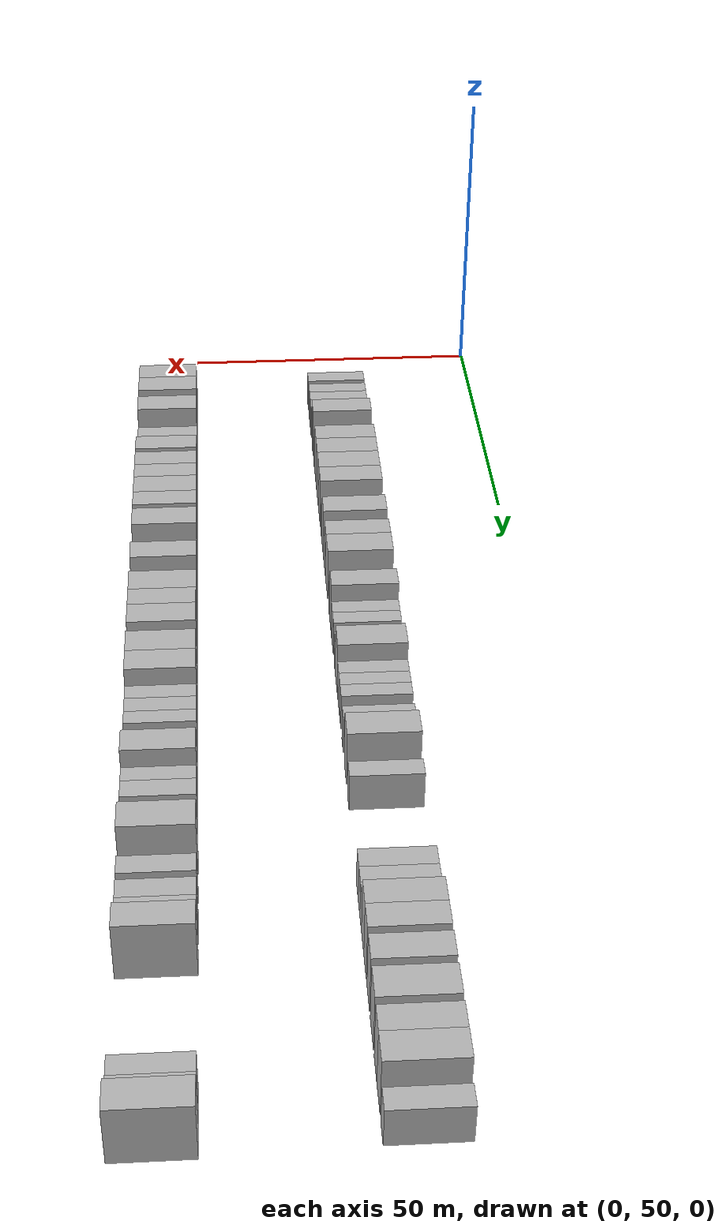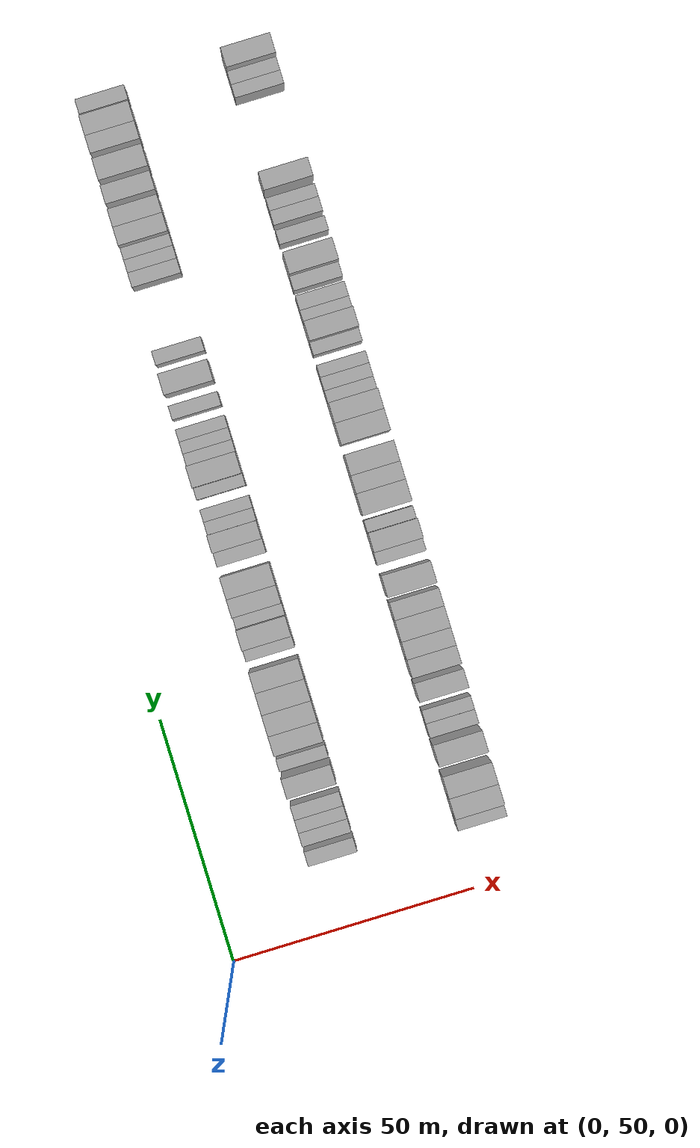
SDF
<sdf version="1.6">
 <world name="default">
  <model name="building_75">
   <static>1</static>
   <pose>25.0000 66.3676 0 0.000000 0.000000 0.000000</pose>
   <link name="link">
    <pose>0 0 3.00 0 0 0</pose>
    <collision name="collision"><geometry><box><size>10.0000 2.9807 6.0000</size></box></geometry></collision>
    <visual name="visual">
     <cast_shadows>0</cast_shadows>
     <geometry><box><size>10.0000 2.9807 6.0000</size></box></geometry>
     <material>
      <script>
       <uri>model://HANNAS_wall/materials/scripts</uri>
       <uri>model://HANNAS_wall/materials/textures</uri>
       <name>vrc/HANNAS_wall</name>
      </script>
     </material>
    </visual>
   </link>
  </model>
  <model name="building_76">
   <static>1</static>
   <pose>25.0000 70.2394 0 0.000000 0.000000 0.000000</pose>
   <link name="link">
    <pose>0 0 3.00 0 0 0</pose>
    <collision name="collision"><geometry><box><size>10.0000 2.7629 6.0000</size></box></geometry></collision>
    <visual name="visual">
     <cast_shadows>0</cast_shadows>
     <geometry><box><size>10.0000 2.7629 6.0000</size></box></geometry>
     <material>
      <script>
       <uri>model://HANNAS_wall/materials/scripts</uri>
       <uri>model://HANNAS_wall/materials/textures</uri>
       <name>vrc/HANNAS_wall</name>
      </script>
     </material>
    </visual>
   </link>
  </model>
  <model name="building_77">
   <static>1</static>
   <pose>25.0000 72.9438 0 0.000000 0.000000 0.000000</pose>
   <link name="link">
    <pose>0 0 3.00 0 0 0</pose>
    <collision name="collision"><geometry><box><size>10.0000 2.6461 6.0000</size></box></geometry></collision>
    <visual name="visual">
     <cast_shadows>0</cast_shadows>
     <geometry><box><size>10.0000 2.6461 6.0000</size></box></geometry>
     <material>
      <script>
       <uri>model://HANNAS_wall/materials/scripts</uri>
       <uri>model://HANNAS_wall/materials/textures</uri>
       <name>vrc/HANNAS_wall</name>
      </script>
     </material>
    </visual>
   </link>
  </model>
  <model name="building_78">
   <static>1</static>
   <pose>25.0000 75.7214 0 0.000000 0.000000 0.000000</pose>
   <link name="link">
    <pose>0 0 3.00 0 0 0</pose>
    <collision name="collision"><geometry><box><size>10.0000 2.9090 6.0000</size></box></geometry></collision>
    <visual name="visual">
     <cast_shadows>0</cast_shadows>
     <geometry><box><size>10.0000 2.9090 6.0000</size></box></geometry>
     <material>
      <script>
       <uri>model://HANNAS_wall/materials/scripts</uri>
       <uri>model://HANNAS_wall/materials/textures</uri>
       <name>vrc/HANNAS_wall</name>
      </script>
     </material>
    </visual>
   </link>
  </model>
  <model name="building_79">
   <static>1</static>
   <pose>25.0000 81.1714 0 0.000000 0.000000 0.000000</pose>
   <link name="link">
    <pose>0 0 4.50 0 0 0</pose>
    <collision name="collision"><geometry><box><size>10.0000 3.9910 9.0000</size></box></geometry></collision>
    <visual name="visual">
     <cast_shadows>0</cast_shadows>
     <geometry><box><size>10.0000 3.9910 9.0000</size></box></geometry>
     <material>
      <script>
       <uri>model://HANNAS_wall/materials/scripts</uri>
       <uri>model://HANNAS_wall/materials/textures</uri>
       <name>vrc/HANNAS_wall</name>
      </script>
     </material>
    </visual>
   </link>
  </model>
  <model name="building_80">
   <static>1</static>
   <pose>25.0000 85.4404 0 0.000000 0.000000 0.000000</pose>
   <link name="link">
    <pose>0 0 3.00 0 0 0</pose>
    <collision name="collision"><geometry><box><size>10.0000 2.5471 6.0000</size></box></geometry></collision>
    <visual name="visual">
     <cast_shadows>0</cast_shadows>
     <geometry><box><size>10.0000 2.5471 6.0000</size></box></geometry>
     <material>
      <script>
       <uri>model://HANNAS_wall/materials/scripts</uri>
       <uri>model://HANNAS_wall/materials/textures</uri>
       <name>vrc/HANNAS_wall</name>
      </script>
     </material>
    </visual>
   </link>
  </model>
  <model name="building_81">
   <static>1</static>
   <pose>25.0000 89.7248 0 0.000000 0.000000 0.000000</pose>
   <link name="link">
    <pose>0 0 4.50 0 0 0</pose>
    <collision name="collision"><geometry><box><size>10.0000 4.0216 9.0000</size></box></geometry></collision>
    <visual name="visual">
     <cast_shadows>0</cast_shadows>
     <geometry><box><size>10.0000 4.0216 9.0000</size></box></geometry>
     <material>
      <script>
       <uri>model://HANNAS_wall/materials/scripts</uri>
       <uri>model://HANNAS_wall/materials/textures</uri>
       <name>vrc/HANNAS_wall</name>
      </script>
     </material>
    </visual>
   </link>
  </model>
  <model name="building_82">
   <static>1</static>
   <pose>25.0000 93.8771 0 0.000000 0.000000 0.000000</pose>
   <link name="link">
    <pose>0 0 4.50 0 0 0</pose>
    <collision name="collision"><geometry><box><size>10.0000 4.2832 9.0000</size></box></geometry></collision>
    <visual name="visual">
     <cast_shadows>0</cast_shadows>
     <geometry><box><size>10.0000 4.2832 9.0000</size></box></geometry>
     <material>
      <script>
       <uri>model://HANNAS_wall/materials/scripts</uri>
       <uri>model://HANNAS_wall/materials/textures</uri>
       <name>vrc/HANNAS_wall</name>
      </script>
     </material>
    </visual>
   </link>
  </model>
  <model name="building_83">
   <static>1</static>
   <pose>25.0000 98.2273 0 0.000000 0.000000 0.000000</pose>
   <link name="link">
    <pose>0 0 4.50 0 0 0</pose>
    <collision name="collision"><geometry><box><size>10.0000 4.4171 9.0000</size></box></geometry></collision>
    <visual name="visual">
     <cast_shadows>0</cast_shadows>
     <geometry><box><size>10.0000 4.4171 9.0000</size></box></geometry>
     <material>
      <script>
       <uri>model://HANNAS_wall/materials/scripts</uri>
       <uri>model://HANNAS_wall/materials/textures</uri>
       <name>vrc/HANNAS_wall</name>
      </script>
     </material>
    </visual>
   </link>
  </model>
  <model name="building_84">
   <static>1</static>
   <pose>25.0000 102.5069 0 0.000000 0.000000 0.000000</pose>
   <link name="link">
    <pose>0 0 4.50 0 0 0</pose>
    <collision name="collision"><geometry><box><size>10.0000 4.1423 9.0000</size></box></geometry></collision>
    <visual name="visual">
     <cast_shadows>0</cast_shadows>
     <geometry><box><size>10.0000 4.1423 9.0000</size></box></geometry>
     <material>
      <script>
       <uri>model://HANNAS_wall/materials/scripts</uri>
       <uri>model://HANNAS_wall/materials/textures</uri>
       <name>vrc/HANNAS_wall</name>
      </script>
     </material>
    </visual>
   </link>
  </model>
  <model name="building_85">
   <static>1</static>
   <pose>25.0000 107.8034 0 0.000000 0.000000 0.000000</pose>
   <link name="link">
    <pose>0 0 3.00 0 0 0</pose>
    <collision name="collision"><geometry><box><size>10.0000 2.4506 6.0000</size></box></geometry></collision>
    <visual name="visual">
     <cast_shadows>0</cast_shadows>
     <geometry><box><size>10.0000 2.4506 6.0000</size></box></geometry>
     <material>
      <script>
       <uri>model://HANNAS_wall/materials/scripts</uri>
       <uri>model://HANNAS_wall/materials/textures</uri>
       <name>vrc/HANNAS_wall</name>
      </script>
     </material>
    </visual>
   </link>
  </model>
  <model name="building_86">
   <static>1</static>
   <pose>25.0000 111.1032 0 0.000000 0.000000 0.000000</pose>
   <link name="link">
    <pose>0 0 4.50 0 0 0</pose>
    <collision name="collision"><geometry><box><size>10.0000 4.1491 9.0000</size></box></geometry></collision>
    <visual name="visual">
     <cast_shadows>0</cast_shadows>
     <geometry><box><size>10.0000 4.1491 9.0000</size></box></geometry>
     <material>
      <script>
       <uri>model://HANNAS_wall/materials/scripts</uri>
       <uri>model://HANNAS_wall/materials/textures</uri>
       <name>vrc/HANNAS_wall</name>
      </script>
     </material>
    </visual>
   </link>
  </model>
  <model name="building_87">
   <static>1</static>
   <pose>25.0000 114.4354 0 0.000000 0.000000 0.000000</pose>
   <link name="link">
    <pose>0 0 3.00 0 0 0</pose>
    <collision name="collision"><geometry><box><size>10.0000 2.5153 6.0000</size></box></geometry></collision>
    <visual name="visual">
     <cast_shadows>0</cast_shadows>
     <geometry><box><size>10.0000 2.5153 6.0000</size></box></geometry>
     <material>
      <script>
       <uri>model://HANNAS_wall/materials/scripts</uri>
       <uri>model://HANNAS_wall/materials/textures</uri>
       <name>vrc/HANNAS_wall</name>
      </script>
     </material>
    </visual>
   </link>
  </model>
  <model name="building_88">
   <static>1</static>
   <pose>25.0000 117.5336 0 0.000000 0.000000 0.000000</pose>
   <link name="link">
    <pose>0 0 4.50 0 0 0</pose>
    <collision name="collision"><geometry><box><size>10.0000 3.6810 9.0000</size></box></geometry></collision>
    <visual name="visual">
     <cast_shadows>0</cast_shadows>
     <geometry><box><size>10.0000 3.6810 9.0000</size></box></geometry>
     <material>
      <script>
       <uri>model://HANNAS_wall/materials/scripts</uri>
       <uri>model://HANNAS_wall/materials/textures</uri>
       <name>vrc/HANNAS_wall</name>
      </script>
     </material>
    </visual>
   </link>
  </model>
  <model name="building_89">
   <static>1</static>
   <pose>25.0000 121.6174 0 0.000000 0.000000 0.000000</pose>
   <link name="link">
    <pose>0 0 4.50 0 0 0</pose>
    <collision name="collision"><geometry><box><size>10.0000 4.4866 9.0000</size></box></geometry></collision>
    <visual name="visual">
     <cast_shadows>0</cast_shadows>
     <geometry><box><size>10.0000 4.4866 9.0000</size></box></geometry>
     <material>
      <script>
       <uri>model://HANNAS_wall/materials/scripts</uri>
       <uri>model://HANNAS_wall/materials/textures</uri>
       <name>vrc/HANNAS_wall</name>
      </script>
     </material>
    </visual>
   </link>
  </model>
  <model name="building_90">
   <static>1</static>
   <pose>25.0000 127.3015 0 0.000000 0.000000 0.000000</pose>
   <link name="link">
    <pose>0 0 3.00 0 0 0</pose>
    <collision name="collision"><geometry><box><size>10.0000 2.8816 6.0000</size></box></geometry></collision>
    <visual name="visual">
     <cast_shadows>0</cast_shadows>
     <geometry><box><size>10.0000 2.8816 6.0000</size></box></geometry>
     <material>
      <script>
       <uri>model://HANNAS_wall/materials/scripts</uri>
       <uri>model://HANNAS_wall/materials/textures</uri>
       <name>vrc/HANNAS_wall</name>
      </script>
     </material>
    </visual>
   </link>
  </model>
  <model name="building_91">
   <static>1</static>
   <pose>25.0000 130.5735 0 0.000000 0.000000 0.000000</pose>
   <link name="link">
    <pose>0 0 4.50 0 0 0</pose>
    <collision name="collision"><geometry><box><size>10.0000 3.6624 9.0000</size></box></geometry></collision>
    <visual name="visual">
     <cast_shadows>0</cast_shadows>
     <geometry><box><size>10.0000 3.6624 9.0000</size></box></geometry>
     <material>
      <script>
       <uri>model://HANNAS_wall/materials/scripts</uri>
       <uri>model://HANNAS_wall/materials/textures</uri>
       <name>vrc/HANNAS_wall</name>
      </script>
     </material>
    </visual>
   </link>
  </model>
  <model name="building_92">
   <static>1</static>
   <pose>25.0000 133.7068 0 0.000000 0.000000 0.000000</pose>
   <link name="link">
    <pose>0 0 3.00 0 0 0</pose>
    <collision name="collision"><geometry><box><size>10.0000 2.6042 6.0000</size></box></geometry></collision>
    <visual name="visual">
     <cast_shadows>0</cast_shadows>
     <geometry><box><size>10.0000 2.6042 6.0000</size></box></geometry>
     <material>
      <script>
       <uri>model://HANNAS_wall/materials/scripts</uri>
       <uri>model://HANNAS_wall/materials/textures</uri>
       <name>vrc/HANNAS_wall</name>
      </script>
     </material>
    </visual>
   </link>
  </model>
  <model name="building_93">
   <static>1</static>
   <pose>25.0000 136.2714 0 0.000000 0.000000 0.000000</pose>
   <link name="link">
    <pose>0 0 3.00 0 0 0</pose>
    <collision name="collision"><geometry><box><size>10.0000 2.5250 6.0000</size></box></geometry></collision>
    <visual name="visual">
     <cast_shadows>0</cast_shadows>
     <geometry><box><size>10.0000 2.5250 6.0000</size></box></geometry>
     <material>
      <script>
       <uri>model://HANNAS_wall/materials/scripts</uri>
       <uri>model://HANNAS_wall/materials/textures</uri>
       <name>vrc/HANNAS_wall</name>
      </script>
     </material>
    </visual>
   </link>
  </model>
  <model name="building_94">
   <static>1</static>
   <pose>25.0000 140.7408 0 0.000000 0.000000 0.000000</pose>
   <link name="link">
    <pose>0 0 3.00 0 0 0</pose>
    <collision name="collision"><geometry><box><size>10.0000 2.4139 6.0000</size></box></geometry></collision>
    <visual name="visual">
     <cast_shadows>0</cast_shadows>
     <geometry><box><size>10.0000 2.4139 6.0000</size></box></geometry>
     <material>
      <script>
       <uri>model://HANNAS_wall/materials/scripts</uri>
       <uri>model://HANNAS_wall/materials/textures</uri>
       <name>vrc/HANNAS_wall</name>
      </script>
     </material>
    </visual>
   </link>
  </model>
  <model name="building_95">
   <static>1</static>
   <pose>25.0000 144.1523 0 0.000000 0.000000 0.000000</pose>
   <link name="link">
    <pose>0 0 4.50 0 0 0</pose>
    <collision name="collision"><geometry><box><size>10.0000 4.4091 9.0000</size></box></geometry></collision>
    <visual name="visual">
     <cast_shadows>0</cast_shadows>
     <geometry><box><size>10.0000 4.4091 9.0000</size></box></geometry>
     <material>
      <script>
       <uri>model://HANNAS_wall/materials/scripts</uri>
       <uri>model://HANNAS_wall/materials/textures</uri>
       <name>vrc/HANNAS_wall</name>
      </script>
     </material>
    </visual>
   </link>
  </model>
  <model name="building_96">
   <static>1</static>
   <pose>25.0000 147.6328 0 0.000000 0.000000 0.000000</pose>
   <link name="link">
    <pose>0 0 3.00 0 0 0</pose>
    <collision name="collision"><geometry><box><size>10.0000 2.5519 6.0000</size></box></geometry></collision>
    <visual name="visual">
     <cast_shadows>0</cast_shadows>
     <geometry><box><size>10.0000 2.5519 6.0000</size></box></geometry>
     <material>
      <script>
       <uri>model://HANNAS_wall/materials/scripts</uri>
       <uri>model://HANNAS_wall/materials/textures</uri>
       <name>vrc/HANNAS_wall</name>
      </script>
     </material>
    </visual>
   </link>
  </model>
  <model name="building_97">
   <static>1</static>
   <pose>25.0000 150.1394 0 0.000000 0.000000 0.000000</pose>
   <link name="link">
    <pose>0 0 3.00 0 0 0</pose>
    <collision name="collision"><geometry><box><size>10.0000 2.4614 6.0000</size></box></geometry></collision>
    <visual name="visual">
     <cast_shadows>0</cast_shadows>
     <geometry><box><size>10.0000 2.4614 6.0000</size></box></geometry>
     <material>
      <script>
       <uri>model://HANNAS_wall/materials/scripts</uri>
       <uri>model://HANNAS_wall/materials/textures</uri>
       <name>vrc/HANNAS_wall</name>
      </script>
     </material>
    </visual>
   </link>
  </model>
  <model name="building_98">
   <static>1</static>
   <pose>25.0000 152.6197 0 0.000000 0.000000 0.000000</pose>
   <link name="link">
    <pose>0 0 3.00 0 0 0</pose>
    <collision name="collision"><geometry><box><size>10.0000 2.4991 6.0000</size></box></geometry></collision>
    <visual name="visual">
     <cast_shadows>0</cast_shadows>
     <geometry><box><size>10.0000 2.4991 6.0000</size></box></geometry>
     <material>
      <script>
       <uri>model://HANNAS_wall/materials/scripts</uri>
       <uri>model://HANNAS_wall/materials/textures</uri>
       <name>vrc/HANNAS_wall</name>
      </script>
     </material>
    </visual>
   </link>
  </model>
  <model name="building_99">
   <static>1</static>
   <pose>25.0000 157.2809 0 0.000000 0.000000 0.000000</pose>
   <link name="link">
    <pose>0 0 3.00 0 0 0</pose>
    <collision name="collision"><geometry><box><size>10.0000 2.8234 6.0000</size></box></geometry></collision>
    <visual name="visual">
     <cast_shadows>0</cast_shadows>
     <geometry><box><size>10.0000 2.8234 6.0000</size></box></geometry>
     <material>
      <script>
       <uri>model://HANNAS_wall/materials/scripts</uri>
       <uri>model://HANNAS_wall/materials/textures</uri>
       <name>vrc/HANNAS_wall</name>
      </script>
     </material>
    </visual>
   </link>
  </model>
  <model name="building_100">
   <static>1</static>
   <pose>25.0000 162.8413 0 0.000000 0.000000 0.000000</pose>
   <link name="link">
    <pose>0 0 4.50 0 0 0</pose>
    <collision name="collision"><geometry><box><size>10.0000 4.2972 9.0000</size></box></geometry></collision>
    <visual name="visual">
     <cast_shadows>0</cast_shadows>
     <geometry><box><size>10.0000 4.2972 9.0000</size></box></geometry>
     <material>
      <script>
       <uri>model://HANNAS_wall/materials/scripts</uri>
       <uri>model://HANNAS_wall/materials/textures</uri>
       <name>vrc/HANNAS_wall</name>
      </script>
     </material>
    </visual>
   </link>
  </model>
  <model name="building_101">
   <static>1</static>
   <pose>25.0000 168.4213 0 0.000000 0.000000 0.000000</pose>
   <link name="link">
    <pose>0 0 3.00 0 0 0</pose>
    <collision name="collision"><geometry><box><size>10.0000 2.8628 6.0000</size></box></geometry></collision>
    <visual name="visual">
     <cast_shadows>0</cast_shadows>
     <geometry><box><size>10.0000 2.8628 6.0000</size></box></geometry>
     <material>
      <script>
       <uri>model://HANNAS_wall/materials/scripts</uri>
       <uri>model://HANNAS_wall/materials/textures</uri>
       <name>vrc/HANNAS_wall</name>
      </script>
     </material>
    </visual>
   </link>
  </model>
  <model name="building_102">
   <static>1</static>
   <pose>25.0000 184.3416 0 0.000000 0.000000 0.000000</pose>
   <link name="link">
    <pose>0 0 3.00 0 0 0</pose>
    <collision name="collision"><geometry><box><size>10.0000 2.9926 6.0000</size></box></geometry></collision>
    <visual name="visual">
     <cast_shadows>0</cast_shadows>
     <geometry><box><size>10.0000 2.9926 6.0000</size></box></geometry>
     <material>
      <script>
       <uri>model://HANNAS_wall/materials/scripts</uri>
       <uri>model://HANNAS_wall/materials/textures</uri>
       <name>vrc/HANNAS_wall</name>
      </script>
     </material>
    </visual>
   </link>
  </model>
  <model name="building_103">
   <static>1</static>
   <pose>25.0000 187.1449 0 0.000000 0.000000 0.000000</pose>
   <link name="link">
    <pose>0 0 3.00 0 0 0</pose>
    <collision name="collision"><geometry><box><size>10.0000 2.6141 6.0000</size></box></geometry></collision>
    <visual name="visual">
     <cast_shadows>0</cast_shadows>
     <geometry><box><size>10.0000 2.6141 6.0000</size></box></geometry>
     <material>
      <script>
       <uri>model://HANNAS_wall/materials/scripts</uri>
       <uri>model://HANNAS_wall/materials/textures</uri>
       <name>vrc/HANNAS_wall</name>
      </script>
     </material>
    </visual>
   </link>
  </model>
  <model name="building_104">
   <static>1</static>
   <pose>25.0000 189.6644 0 0.000000 0.000000 0.000000</pose>
   <link name="link">
    <pose>0 0 3.00 0 0 0</pose>
    <collision name="collision"><geometry><box><size>10.0000 2.4250 6.0000</size></box></geometry></collision>
    <visual name="visual">
     <cast_shadows>0</cast_shadows>
     <geometry><box><size>10.0000 2.4250 6.0000</size></box></geometry>
     <material>
      <script>
       <uri>model://HANNAS_wall/materials/scripts</uri>
       <uri>model://HANNAS_wall/materials/textures</uri>
       <name>vrc/HANNAS_wall</name>
      </script>
     </material>
    </visual>
   </link>
  </model>
  <model name="building_105">
   <static>1</static>
   <pose>25.0000 192.7424 0 0.000000 0.000000 0.000000</pose>
   <link name="link">
    <pose>0 0 4.50 0 0 0</pose>
    <collision name="collision"><geometry><box><size>10.0000 3.7309 9.0000</size></box></geometry></collision>
    <visual name="visual">
     <cast_shadows>0</cast_shadows>
     <geometry><box><size>10.0000 3.7309 9.0000</size></box></geometry>
     <material>
      <script>
       <uri>model://HANNAS_wall/materials/scripts</uri>
       <uri>model://HANNAS_wall/materials/textures</uri>
       <name>vrc/HANNAS_wall</name>
      </script>
     </material>
    </visual>
   </link>
  </model>
  <model name="building_106">
   <static>1</static>
   <pose>25.0000 196.4420 0 0.000000 0.000000 0.000000</pose>
   <link name="link">
    <pose>0 0 4.50 0 0 0</pose>
    <collision name="collision"><geometry><box><size>10.0000 3.6682 9.0000</size></box></geometry></collision>
    <visual name="visual">
     <cast_shadows>0</cast_shadows>
     <geometry><box><size>10.0000 3.6682 9.0000</size></box></geometry>
     <material>
      <script>
       <uri>model://HANNAS_wall/materials/scripts</uri>
       <uri>model://HANNAS_wall/materials/textures</uri>
       <name>vrc/HANNAS_wall</name>
      </script>
     </material>
    </visual>
   </link>
  </model>
  <model name="building_107">
   <static>1</static>
   <pose>25.0000 201.1630 0 0.000000 0.000000 0.000000</pose>
   <link name="link">
    <pose>0 0 4.50 0 0 0</pose>
    <collision name="collision"><geometry><box><size>10.0000 3.7739 9.0000</size></box></geometry></collision>
    <visual name="visual">
     <cast_shadows>0</cast_shadows>
     <geometry><box><size>10.0000 3.7739 9.0000</size></box></geometry>
     <material>
      <script>
       <uri>model://HANNAS_wall/materials/scripts</uri>
       <uri>model://HANNAS_wall/materials/textures</uri>
       <name>vrc/HANNAS_wall</name>
      </script>
     </material>
    </visual>
   </link>
  </model>
  <model name="building_108">
   <static>1</static>
   <pose>25.0000 206.2805 0 0.000000 0.000000 0.000000</pose>
   <link name="link">
    <pose>0 0 4.50 0 0 0</pose>
    <collision name="collision"><geometry><box><size>10.0000 4.4611 9.0000</size></box></geometry></collision>
    <visual name="visual">
     <cast_shadows>0</cast_shadows>
     <geometry><box><size>10.0000 4.4611 9.0000</size></box></geometry>
     <material>
      <script>
       <uri>model://HANNAS_wall/materials/scripts</uri>
       <uri>model://HANNAS_wall/materials/textures</uri>
       <name>vrc/HANNAS_wall</name>
      </script>
     </material>
    </visual>
   </link>
  </model>
  <model name="building_109">
   <static>1</static>
   <pose>25.0000 211.3111 0 0.000000 0.000000 0.000000</pose>
   <link name="link">
    <pose>0 0 4.50 0 0 0</pose>
    <collision name="collision"><geometry><box><size>10.0000 3.6001 9.0000</size></box></geometry></collision>
    <visual name="visual">
     <cast_shadows>0</cast_shadows>
     <geometry><box><size>10.0000 3.6001 9.0000</size></box></geometry>
     <material>
      <script>
       <uri>model://HANNAS_wall/materials/scripts</uri>
       <uri>model://HANNAS_wall/materials/textures</uri>
       <name>vrc/HANNAS_wall</name>
      </script>
     </material>
    </visual>
   </link>
  </model>
  <model name="building_110">
   <static>1</static>
   <pose>25.0000 215.1488 0 0.000000 0.000000 0.000000</pose>
   <link name="link">
    <pose>0 0 4.50 0 0 0</pose>
    <collision name="collision"><geometry><box><size>10.0000 4.0752 9.0000</size></box></geometry></collision>
    <visual name="visual">
     <cast_shadows>0</cast_shadows>
     <geometry><box><size>10.0000 4.0752 9.0000</size></box></geometry>
     <material>
      <script>
       <uri>model://HANNAS_wall/materials/scripts</uri>
       <uri>model://HANNAS_wall/materials/textures</uri>
       <name>vrc/HANNAS_wall</name>
      </script>
     </material>
    </visual>
   </link>
  </model>
  <model name="building_111">
   <static>1</static>
   <pose>25.0000 219.6779 0 0.000000 0.000000 0.000000</pose>
   <link name="link">
    <pose>0 0 3.00 0 0 0</pose>
    <collision name="collision"><geometry><box><size>10.0000 2.9830 6.0000</size></box></geometry></collision>
    <visual name="visual">
     <cast_shadows>0</cast_shadows>
     <geometry><box><size>10.0000 2.9830 6.0000</size></box></geometry>
     <material>
      <script>
       <uri>model://HANNAS_wall/materials/scripts</uri>
       <uri>model://HANNAS_wall/materials/textures</uri>
       <name>vrc/HANNAS_wall</name>
      </script>
     </material>
    </visual>
   </link>
  </model>
  <model name="building_182">
   <static>1</static>
   <pose>55.0000 64.4190 0 0.000000 0.000000 0.000000</pose>
   <link name="link">
    <pose>0 0 3.00 0 0 0</pose>
    <collision name="collision"><geometry><box><size>10.0000 2.8401 6.0000</size></box></geometry></collision>
    <visual name="visual">
     <cast_shadows>0</cast_shadows>
     <geometry><box><size>10.0000 2.8401 6.0000</size></box></geometry>
     <material>
      <script>
       <uri>model://HANNAS_wall/materials/scripts</uri>
       <uri>model://HANNAS_wall/materials/textures</uri>
       <name>vrc/HANNAS_wall</name>
      </script>
     </material>
    </visual>
   </link>
  </model>
  <model name="building_183">
   <static>1</static>
   <pose>55.0000 67.9407 0 0.000000 0.000000 0.000000</pose>
   <link name="link">
    <pose>0 0 4.50 0 0 0</pose>
    <collision name="collision"><geometry><box><size>10.0000 4.2033 9.0000</size></box></geometry></collision>
    <visual name="visual">
     <cast_shadows>0</cast_shadows>
     <geometry><box><size>10.0000 4.2033 9.0000</size></box></geometry>
     <material>
      <script>
       <uri>model://HANNAS_wall/materials/scripts</uri>
       <uri>model://HANNAS_wall/materials/textures</uri>
       <name>vrc/HANNAS_wall</name>
      </script>
     </material>
    </visual>
   </link>
  </model>
  <model name="building_184">
   <static>1</static>
   <pose>55.0000 72.2637 0 0.000000 0.000000 0.000000</pose>
   <link name="link">
    <pose>0 0 4.50 0 0 0</pose>
    <collision name="collision"><geometry><box><size>10.0000 4.4428 9.0000</size></box></geometry></collision>
    <visual name="visual">
     <cast_shadows>0</cast_shadows>
     <geometry><box><size>10.0000 4.4428 9.0000</size></box></geometry>
     <material>
      <script>
       <uri>model://HANNAS_wall/materials/scripts</uri>
       <uri>model://HANNAS_wall/materials/textures</uri>
       <name>vrc/HANNAS_wall</name>
      </script>
     </material>
    </visual>
   </link>
  </model>
  <model name="building_185">
   <static>1</static>
   <pose>55.0000 78.6843 0 0.000000 0.000000 0.000000</pose>
   <link name="link">
    <pose>0 0 4.50 0 0 0</pose>
    <collision name="collision"><geometry><box><size>10.0000 4.3985 9.0000</size></box></geometry></collision>
    <visual name="visual">
     <cast_shadows>0</cast_shadows>
     <geometry><box><size>10.0000 4.3985 9.0000</size></box></geometry>
     <material>
      <script>
       <uri>model://HANNAS_wall/materials/scripts</uri>
       <uri>model://HANNAS_wall/materials/textures</uri>
       <name>vrc/HANNAS_wall</name>
      </script>
     </material>
    </visual>
   </link>
  </model>
  <model name="building_186">
   <static>1</static>
   <pose>55.0000 83.3362 0 0.000000 0.000000 0.000000</pose>
   <link name="link">
    <pose>0 0 3.00 0 0 0</pose>
    <collision name="collision"><geometry><box><size>10.0000 2.9052 6.0000</size></box></geometry></collision>
    <visual name="visual">
     <cast_shadows>0</cast_shadows>
     <geometry><box><size>10.0000 2.9052 6.0000</size></box></geometry>
     <material>
      <script>
       <uri>model://HANNAS_wall/materials/scripts</uri>
       <uri>model://HANNAS_wall/materials/textures</uri>
       <name>vrc/HANNAS_wall</name>
      </script>
     </material>
    </visual>
   </link>
  </model>
  <model name="building_187">
   <static>1</static>
   <pose>55.0000 86.1601 0 0.000000 0.000000 0.000000</pose>
   <link name="link">
    <pose>0 0 3.00 0 0 0</pose>
    <collision name="collision"><geometry><box><size>10.0000 2.7425 6.0000</size></box></geometry></collision>
    <visual name="visual">
     <cast_shadows>0</cast_shadows>
     <geometry><box><size>10.0000 2.7425 6.0000</size></box></geometry>
     <material>
      <script>
       <uri>model://HANNAS_wall/materials/scripts</uri>
       <uri>model://HANNAS_wall/materials/textures</uri>
       <name>vrc/HANNAS_wall</name>
      </script>
     </material>
    </visual>
   </link>
  </model>
  <model name="building_188">
   <static>1</static>
   <pose>55.0000 91.4443 0 0.000000 0.000000 0.000000</pose>
   <link name="link">
    <pose>0 0 4.50 0 0 0</pose>
    <collision name="collision"><geometry><box><size>10.0000 3.8260 9.0000</size></box></geometry></collision>
    <visual name="visual">
     <cast_shadows>0</cast_shadows>
     <geometry><box><size>10.0000 3.8260 9.0000</size></box></geometry>
     <material>
      <script>
       <uri>model://HANNAS_wall/materials/scripts</uri>
       <uri>model://HANNAS_wall/materials/textures</uri>
       <name>vrc/HANNAS_wall</name>
      </script>
     </material>
    </visual>
   </link>
  </model>
  <model name="building_189">
   <static>1</static>
   <pose>55.0000 96.2243 0 0.000000 0.000000 0.000000</pose>
   <link name="link">
    <pose>0 0 4.50 0 0 0</pose>
    <collision name="collision"><geometry><box><size>10.0000 3.7340 9.0000</size></box></geometry></collision>
    <visual name="visual">
     <cast_shadows>0</cast_shadows>
     <geometry><box><size>10.0000 3.7340 9.0000</size></box></geometry>
     <material>
      <script>
       <uri>model://HANNAS_wall/materials/scripts</uri>
       <uri>model://HANNAS_wall/materials/textures</uri>
       <name>vrc/HANNAS_wall</name>
      </script>
     </material>
    </visual>
   </link>
  </model>
  <model name="building_190">
   <static>1</static>
   <pose>55.0000 99.8944 0 0.000000 0.000000 0.000000</pose>
   <link name="link">
    <pose>0 0 4.50 0 0 0</pose>
    <collision name="collision"><geometry><box><size>10.0000 3.6063 9.0000</size></box></geometry></collision>
    <visual name="visual">
     <cast_shadows>0</cast_shadows>
     <geometry><box><size>10.0000 3.6063 9.0000</size></box></geometry>
     <material>
      <script>
       <uri>model://HANNAS_wall/materials/scripts</uri>
       <uri>model://HANNAS_wall/materials/textures</uri>
       <name>vrc/HANNAS_wall</name>
      </script>
     </material>
    </visual>
   </link>
  </model>
  <model name="building_191">
   <static>1</static>
   <pose>55.0000 103.8733 0 0.000000 0.000000 0.000000</pose>
   <link name="link">
    <pose>0 0 4.50 0 0 0</pose>
    <collision name="collision"><geometry><box><size>10.0000 4.3514 9.0000</size></box></geometry></collision>
    <visual name="visual">
     <cast_shadows>0</cast_shadows>
     <geometry><box><size>10.0000 4.3514 9.0000</size></box></geometry>
     <material>
      <script>
       <uri>model://HANNAS_wall/materials/scripts</uri>
       <uri>model://HANNAS_wall/materials/textures</uri>
       <name>vrc/HANNAS_wall</name>
      </script>
     </material>
    </visual>
   </link>
  </model>
  <model name="building_192">
   <static>1</static>
   <pose>55.0000 107.8724 0 0.000000 0.000000 0.000000</pose>
   <link name="link">
    <pose>0 0 4.50 0 0 0</pose>
    <collision name="collision"><geometry><box><size>10.0000 3.6470 9.0000</size></box></geometry></collision>
    <visual name="visual">
     <cast_shadows>0</cast_shadows>
     <geometry><box><size>10.0000 3.6470 9.0000</size></box></geometry>
     <material>
      <script>
       <uri>model://HANNAS_wall/materials/scripts</uri>
       <uri>model://HANNAS_wall/materials/textures</uri>
       <name>vrc/HANNAS_wall</name>
      </script>
     </material>
    </visual>
   </link>
  </model>
  <model name="building_193">
   <static>1</static>
   <pose>55.0000 112.9070 0 0.000000 0.000000 0.000000</pose>
   <link name="link">
    <pose>0 0 4.50 0 0 0</pose>
    <collision name="collision"><geometry><box><size>10.0000 4.4221 9.0000</size></box></geometry></collision>
    <visual name="visual">
     <cast_shadows>0</cast_shadows>
     <geometry><box><size>10.0000 4.4221 9.0000</size></box></geometry>
     <material>
      <script>
       <uri>model://HANNAS_wall/materials/scripts</uri>
       <uri>model://HANNAS_wall/materials/textures</uri>
       <name>vrc/HANNAS_wall</name>
      </script>
     </material>
    </visual>
   </link>
  </model>
  <model name="building_194">
   <static>1</static>
   <pose>55.0000 118.4451 0 0.000000 0.000000 0.000000</pose>
   <link name="link">
    <pose>0 0 3.00 0 0 0</pose>
    <collision name="collision"><geometry><box><size>10.0000 2.6540 6.0000</size></box></geometry></collision>
    <visual name="visual">
     <cast_shadows>0</cast_shadows>
     <geometry><box><size>10.0000 2.6540 6.0000</size></box></geometry>
     <material>
      <script>
       <uri>model://HANNAS_wall/materials/scripts</uri>
       <uri>model://HANNAS_wall/materials/textures</uri>
       <name>vrc/HANNAS_wall</name>
      </script>
     </material>
    </visual>
   </link>
  </model>
  <model name="building_195">
   <static>1</static>
   <pose>55.0000 121.7594 0 0.000000 0.000000 0.000000</pose>
   <link name="link">
    <pose>0 0 4.50 0 0 0</pose>
    <collision name="collision"><geometry><box><size>10.0000 3.9746 9.0000</size></box></geometry></collision>
    <visual name="visual">
     <cast_shadows>0</cast_shadows>
     <geometry><box><size>10.0000 3.9746 9.0000</size></box></geometry>
     <material>
      <script>
       <uri>model://HANNAS_wall/materials/scripts</uri>
       <uri>model://HANNAS_wall/materials/textures</uri>
       <name>vrc/HANNAS_wall</name>
      </script>
     </material>
    </visual>
   </link>
  </model>
  <model name="building_196">
   <static>1</static>
   <pose>55.0000 124.9969 0 0.000000 0.000000 0.000000</pose>
   <link name="link">
    <pose>0 0 3.00 0 0 0</pose>
    <collision name="collision"><geometry><box><size>10.0000 2.5003 6.0000</size></box></geometry></collision>
    <visual name="visual">
     <cast_shadows>0</cast_shadows>
     <geometry><box><size>10.0000 2.5003 6.0000</size></box></geometry>
     <material>
      <script>
       <uri>model://HANNAS_wall/materials/scripts</uri>
       <uri>model://HANNAS_wall/materials/textures</uri>
       <name>vrc/HANNAS_wall</name>
      </script>
     </material>
    </visual>
   </link>
  </model>
  <model name="building_197">
   <static>1</static>
   <pose>55.0000 129.4509 0 0.000000 0.000000 0.000000</pose>
   <link name="link">
    <pose>0 0 4.50 0 0 0</pose>
    <collision name="collision"><geometry><box><size>10.0000 4.4078 9.0000</size></box></geometry></collision>
    <visual name="visual">
     <cast_shadows>0</cast_shadows>
     <geometry><box><size>10.0000 4.4078 9.0000</size></box></geometry>
     <material>
      <script>
       <uri>model://HANNAS_wall/materials/scripts</uri>
       <uri>model://HANNAS_wall/materials/textures</uri>
       <name>vrc/HANNAS_wall</name>
      </script>
     </material>
    </visual>
   </link>
  </model>
  <model name="building_198">
   <static>1</static>
   <pose>55.0000 133.4817 0 0.000000 0.000000 0.000000</pose>
   <link name="link">
    <pose>0 0 4.50 0 0 0</pose>
    <collision name="collision"><geometry><box><size>10.0000 3.6537 9.0000</size></box></geometry></collision>
    <visual name="visual">
     <cast_shadows>0</cast_shadows>
     <geometry><box><size>10.0000 3.6537 9.0000</size></box></geometry>
     <material>
      <script>
       <uri>model://HANNAS_wall/materials/scripts</uri>
       <uri>model://HANNAS_wall/materials/textures</uri>
       <name>vrc/HANNAS_wall</name>
      </script>
     </material>
    </visual>
   </link>
  </model>
  <model name="building_199">
   <static>1</static>
   <pose>55.0000 137.4118 0 0.000000 0.000000 0.000000</pose>
   <link name="link">
    <pose>0 0 4.50 0 0 0</pose>
    <collision name="collision"><geometry><box><size>10.0000 4.2064 9.0000</size></box></geometry></collision>
    <visual name="visual">
     <cast_shadows>0</cast_shadows>
     <geometry><box><size>10.0000 4.2064 9.0000</size></box></geometry>
     <material>
      <script>
       <uri>model://HANNAS_wall/materials/scripts</uri>
       <uri>model://HANNAS_wall/materials/textures</uri>
       <name>vrc/HANNAS_wall</name>
      </script>
     </material>
    </visual>
   </link>
  </model>
  <model name="building_200">
   <static>1</static>
   <pose>55.0000 143.7130 0 0.000000 0.000000 0.000000</pose>
   <link name="link">
    <pose>0 0 4.50 0 0 0</pose>
    <collision name="collision"><geometry><box><size>10.0000 4.3960 9.0000</size></box></geometry></collision>
    <visual name="visual">
     <cast_shadows>0</cast_shadows>
     <geometry><box><size>10.0000 4.3960 9.0000</size></box></geometry>
     <material>
      <script>
       <uri>model://HANNAS_wall/materials/scripts</uri>
       <uri>model://HANNAS_wall/materials/textures</uri>
       <name>vrc/HANNAS_wall</name>
      </script>
     </material>
    </visual>
   </link>
  </model>
  <model name="building_201">
   <static>1</static>
   <pose>55.0000 147.9797 0 0.000000 0.000000 0.000000</pose>
   <link name="link">
    <pose>0 0 4.50 0 0 0</pose>
    <collision name="collision"><geometry><box><size>10.0000 4.1375 9.0000</size></box></geometry></collision>
    <visual name="visual">
     <cast_shadows>0</cast_shadows>
     <geometry><box><size>10.0000 4.1375 9.0000</size></box></geometry>
     <material>
      <script>
       <uri>model://HANNAS_wall/materials/scripts</uri>
       <uri>model://HANNAS_wall/materials/textures</uri>
       <name>vrc/HANNAS_wall</name>
      </script>
     </material>
    </visual>
   </link>
  </model>
  <model name="building_202">
   <static>1</static>
   <pose>55.0000 151.3556 0 0.000000 0.000000 0.000000</pose>
   <link name="link">
    <pose>0 0 3.00 0 0 0</pose>
    <collision name="collision"><geometry><box><size>10.0000 2.6144 6.0000</size></box></geometry></collision>
    <visual name="visual">
     <cast_shadows>0</cast_shadows>
     <geometry><box><size>10.0000 2.6144 6.0000</size></box></geometry>
     <material>
      <script>
       <uri>model://HANNAS_wall/materials/scripts</uri>
       <uri>model://HANNAS_wall/materials/textures</uri>
       <name>vrc/HANNAS_wall</name>
      </script>
     </material>
    </visual>
   </link>
  </model>
  <model name="building_203">
   <static>1</static>
   <pose>55.0000 154.0247 0 0.000000 0.000000 0.000000</pose>
   <link name="link">
    <pose>0 0 3.00 0 0 0</pose>
    <collision name="collision"><geometry><box><size>10.0000 2.7236 6.0000</size></box></geometry></collision>
    <visual name="visual">
     <cast_shadows>0</cast_shadows>
     <geometry><box><size>10.0000 2.7236 6.0000</size></box></geometry>
     <material>
      <script>
       <uri>model://HANNAS_wall/materials/scripts</uri>
       <uri>model://HANNAS_wall/materials/textures</uri>
       <name>vrc/HANNAS_wall</name>
      </script>
     </material>
    </visual>
   </link>
  </model>
  <model name="building_204">
   <static>1</static>
   <pose>55.0000 156.6205 0 0.000000 0.000000 0.000000</pose>
   <link name="link">
    <pose>0 0 3.00 0 0 0</pose>
    <collision name="collision"><geometry><box><size>10.0000 2.4681 6.0000</size></box></geometry></collision>
    <visual name="visual">
     <cast_shadows>0</cast_shadows>
     <geometry><box><size>10.0000 2.4681 6.0000</size></box></geometry>
     <material>
      <script>
       <uri>model://HANNAS_wall/materials/scripts</uri>
       <uri>model://HANNAS_wall/materials/textures</uri>
       <name>vrc/HANNAS_wall</name>
      </script>
     </material>
    </visual>
   </link>
  </model>
  <model name="building_205">
   <static>1</static>
   <pose>55.0000 161.1910 0 0.000000 0.000000 0.000000</pose>
   <link name="link">
    <pose>0 0 3.00 0 0 0</pose>
    <collision name="collision"><geometry><box><size>10.0000 2.6730 6.0000</size></box></geometry></collision>
    <visual name="visual">
     <cast_shadows>0</cast_shadows>
     <geometry><box><size>10.0000 2.6730 6.0000</size></box></geometry>
     <material>
      <script>
       <uri>model://HANNAS_wall/materials/scripts</uri>
       <uri>model://HANNAS_wall/materials/textures</uri>
       <name>vrc/HANNAS_wall</name>
      </script>
     </material>
    </visual>
   </link>
  </model>
  <model name="building_206">
   <static>1</static>
   <pose>55.0000 164.5244 0 0.000000 0.000000 0.000000</pose>
   <link name="link">
    <pose>0 0 4.50 0 0 0</pose>
    <collision name="collision"><geometry><box><size>10.0000 3.9936 9.0000</size></box></geometry></collision>
    <visual name="visual">
     <cast_shadows>0</cast_shadows>
     <geometry><box><size>10.0000 3.9936 9.0000</size></box></geometry>
     <material>
      <script>
       <uri>model://HANNAS_wall/materials/scripts</uri>
       <uri>model://HANNAS_wall/materials/textures</uri>
       <name>vrc/HANNAS_wall</name>
      </script>
     </material>
    </visual>
   </link>
  </model>
  <model name="building_207">
   <static>1</static>
   <pose>55.0000 167.7759 0 0.000000 0.000000 0.000000</pose>
   <link name="link">
    <pose>0 0 3.00 0 0 0</pose>
    <collision name="collision"><geometry><box><size>10.0000 2.5095 6.0000</size></box></geometry></collision>
    <visual name="visual">
     <cast_shadows>0</cast_shadows>
     <geometry><box><size>10.0000 2.5095 6.0000</size></box></geometry>
     <material>
      <script>
       <uri>model://HANNAS_wall/materials/scripts</uri>
       <uri>model://HANNAS_wall/materials/textures</uri>
       <name>vrc/HANNAS_wall</name>
      </script>
     </material>
    </visual>
   </link>
  </model>
  <model name="building_208">
   <static>1</static>
   <pose>55.0000 170.5244 0 0.000000 0.000000 0.000000</pose>
   <link name="link">
    <pose>0 0 3.00 0 0 0</pose>
    <collision name="collision"><geometry><box><size>10.0000 2.9876 6.0000</size></box></geometry></collision>
    <visual name="visual">
     <cast_shadows>0</cast_shadows>
     <geometry><box><size>10.0000 2.9876 6.0000</size></box></geometry>
     <material>
      <script>
       <uri>model://HANNAS_wall/materials/scripts</uri>
       <uri>model://HANNAS_wall/materials/textures</uri>
       <name>vrc/HANNAS_wall</name>
      </script>
     </material>
    </visual>
   </link>
  </model>
  <model name="building_209">
   <static>1</static>
   <pose>55.0000 174.5155 0 0.000000 0.000000 0.000000</pose>
   <link name="link">
    <pose>0 0 3.00 0 0 0</pose>
    <collision name="collision"><geometry><box><size>10.0000 2.9946 6.0000</size></box></geometry></collision>
    <visual name="visual">
     <cast_shadows>0</cast_shadows>
     <geometry><box><size>10.0000 2.9946 6.0000</size></box></geometry>
     <material>
      <script>
       <uri>model://HANNAS_wall/materials/scripts</uri>
       <uri>model://HANNAS_wall/materials/textures</uri>
       <name>vrc/HANNAS_wall</name>
      </script>
     </material>
    </visual>
   </link>
  </model>
  <model name="building_210">
   <static>1</static>
   <pose>55.0000 178.2287 0 0.000000 0.000000 0.000000</pose>
   <link name="link">
    <pose>0 0 4.50 0 0 0</pose>
    <collision name="collision"><geometry><box><size>10.0000 4.4319 9.0000</size></box></geometry></collision>
    <visual name="visual">
     <cast_shadows>0</cast_shadows>
     <geometry><box><size>10.0000 4.4319 9.0000</size></box></geometry>
     <material>
      <script>
       <uri>model://HANNAS_wall/materials/scripts</uri>
       <uri>model://HANNAS_wall/materials/textures</uri>
       <name>vrc/HANNAS_wall</name>
      </script>
     </material>
    </visual>
   </link>
  </model>
  <model name="building_211">
   <static>1</static>
   <pose>55.0000 183.9057 0 0.000000 0.000000 0.000000</pose>
   <link name="link">
    <pose>0 0 3.00 0 0 0</pose>
    <collision name="collision"><geometry><box><size>10.0000 2.9219 6.0000</size></box></geometry></collision>
    <visual name="visual">
     <cast_shadows>0</cast_shadows>
     <geometry><box><size>10.0000 2.9219 6.0000</size></box></geometry>
     <material>
      <script>
       <uri>model://HANNAS_wall/materials/scripts</uri>
       <uri>model://HANNAS_wall/materials/textures</uri>
       <name>vrc/HANNAS_wall</name>
      </script>
     </material>
    </visual>
   </link>
  </model>
  <model name="building_212">
   <static>1</static>
   <pose>55.0000 187.8329 0 0.000000 0.000000 0.000000</pose>
   <link name="link">
    <pose>0 0 3.00 0 0 0</pose>
    <collision name="collision"><geometry><box><size>10.0000 2.9325 6.0000</size></box></geometry></collision>
    <visual name="visual">
     <cast_shadows>0</cast_shadows>
     <geometry><box><size>10.0000 2.9325 6.0000</size></box></geometry>
     <material>
      <script>
       <uri>model://HANNAS_wall/materials/scripts</uri>
       <uri>model://HANNAS_wall/materials/textures</uri>
       <name>vrc/HANNAS_wall</name>
      </script>
     </material>
    </visual>
   </link>
  </model>
  <model name="building_213">
   <static>1</static>
   <pose>55.0000 190.6056 0 0.000000 0.000000 0.000000</pose>
   <link name="link">
    <pose>0 0 3.00 0 0 0</pose>
    <collision name="collision"><geometry><box><size>10.0000 2.6130 6.0000</size></box></geometry></collision>
    <visual name="visual">
     <cast_shadows>0</cast_shadows>
     <geometry><box><size>10.0000 2.6130 6.0000</size></box></geometry>
     <material>
      <script>
       <uri>model://HANNAS_wall/materials/scripts</uri>
       <uri>model://HANNAS_wall/materials/textures</uri>
       <name>vrc/HANNAS_wall</name>
      </script>
     </material>
    </visual>
   </link>
  </model>
  <model name="building_214">
   <static>1</static>
   <pose>55.0000 194.7738 0 0.000000 0.000000 0.000000</pose>
   <link name="link">
    <pose>0 0 4.50 0 0 0</pose>
    <collision name="collision"><geometry><box><size>10.0000 3.7235 9.0000</size></box></geometry></collision>
    <visual name="visual">
     <cast_shadows>0</cast_shadows>
     <geometry><box><size>10.0000 3.7235 9.0000</size></box></geometry>
     <material>
      <script>
       <uri>model://HANNAS_wall/materials/scripts</uri>
       <uri>model://HANNAS_wall/materials/textures</uri>
       <name>vrc/HANNAS_wall</name>
      </script>
     </material>
    </visual>
   </link>
  </model>
  <model name="building_215">
   <static>1</static>
   <pose>55.0000 213.6712 0 0.000000 0.000000 0.000000</pose>
   <link name="link">
    <pose>0 0 3.00 0 0 0</pose>
    <collision name="collision"><geometry><box><size>10.0000 2.6904 6.0000</size></box></geometry></collision>
    <visual name="visual">
     <cast_shadows>0</cast_shadows>
     <geometry><box><size>10.0000 2.6904 6.0000</size></box></geometry>
     <material>
      <script>
       <uri>model://HANNAS_wall/materials/scripts</uri>
       <uri>model://HANNAS_wall/materials/textures</uri>
       <name>vrc/HANNAS_wall</name>
      </script>
     </material>
    </visual>
   </link>
  </model>
  <model name="building_216">
   <static>1</static>
   <pose>55.0000 216.3781 0 0.000000 0.000000 0.000000</pose>
   <link name="link">
    <pose>0 0 3.00 0 0 0</pose>
    <collision name="collision"><geometry><box><size>10.0000 2.7233 6.0000</size></box></geometry></collision>
    <visual name="visual">
     <cast_shadows>0</cast_shadows>
     <geometry><box><size>10.0000 2.7233 6.0000</size></box></geometry>
     <material>
      <script>
       <uri>model://HANNAS_wall/materials/scripts</uri>
       <uri>model://HANNAS_wall/materials/textures</uri>
       <name>vrc/HANNAS_wall</name>
      </script>
     </material>
    </visual>
   </link>
  </model>
  <model name="building_217">
   <static>1</static>
   <pose>55.0000 219.7459 0 0.000000 0.000000 0.000000</pose>
   <link name="link">
    <pose>0 0 4.50 0 0 0</pose>
    <collision name="collision"><geometry><box><size>10.0000 4.0123 9.0000</size></box></geometry></collision>
    <visual name="visual">
     <cast_shadows>0</cast_shadows>
     <geometry><box><size>10.0000 4.0123 9.0000</size></box></geometry>
     <material>
      <script>
       <uri>model://HANNAS_wall/materials/scripts</uri>
       <uri>model://HANNAS_wall/materials/textures</uri>
       <name>vrc/HANNAS_wall</name>
      </script>
     </material>
    </visual>
   </link>
  </model>
 </world>
</sdf>
